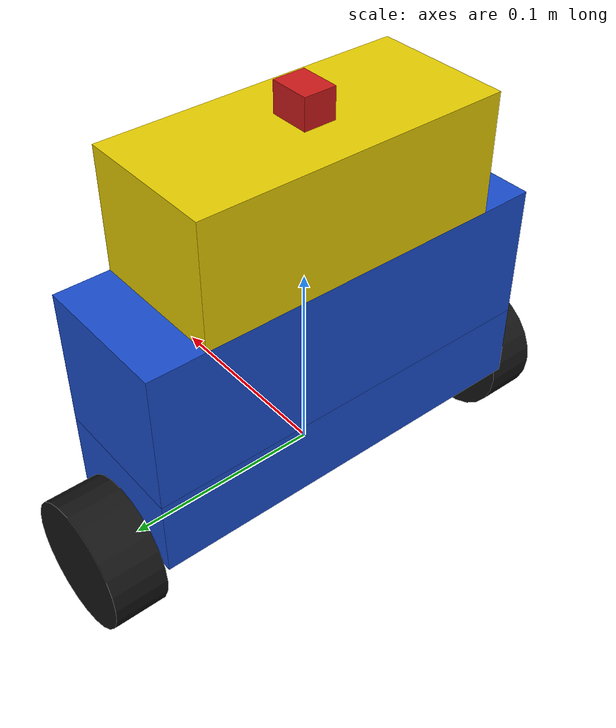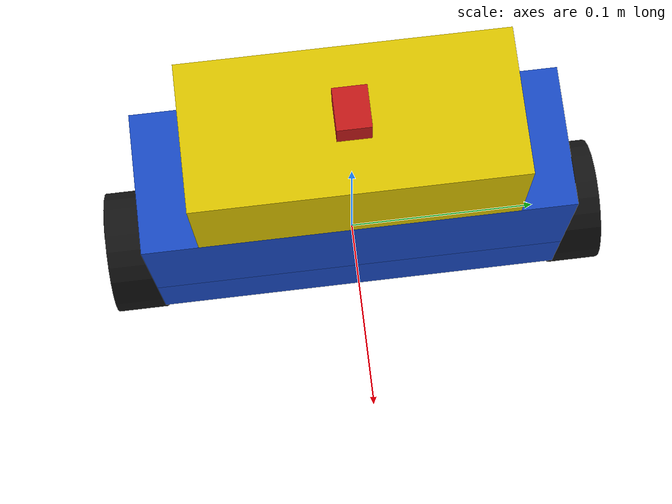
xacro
<?xml version="1.0"?>
<robot name="segway_mini" xmlns:xacro="http://www.ros.org/wiki/xacro">

  <!-- ============================================================
       PARAMÈTRES GÉOMÉTRIQUES
  ============================================================ -->

  <!-- Châssis -->
  <xacro:property name="chassis_x" value="0.070"/>  <!-- profondeur 70mm -->
  <xacro:property name="chassis_y" value="0.210"/>  <!-- largeur 210mm -->

  <!-- Roues -->
  <xacro:property name="wheel_r"   value="0.0325"/> <!-- rayon Ø65/2 -->
  <xacro:property name="wheel_w"   value="0.027"/>  <!-- largeur 27mm -->
  <xacro:property name="wheel_y"   value="${chassis_y/2 + wheel_w/2}"/>
  <!-- Largeur totale = 0.210 + 2×0.027 = 0.264m -->

  <!-- Moteur -->
  <xacro:property name="motor_rpm_noload" value="1000"/>
  <xacro:property name="gear_ratio"       value="70"/>
  <xacro:property name="wheel_rpm_max"    value="130"/>
  <xacro:property name="encoder_cpr"      value="11"/>
  <!-- Résolution roue = 11 × 70 × 4 = 3080 counts/tr -->

  <xacro:property name="motor_hz"  value="0.010"/>  <!-- 20mm/2 -->
  <xacro:property name="elec_hz"   value="0.020"/>  <!-- 40mm/2 -->
  <xacro:property name="cards_hz"  value="0.035"/>  <!-- 70mm/2 -->
  <xacro:property name="lipo_hz"   value="0.030"/>  <!-- 60mm/2 -->
  <xacro:property name="imu_hz"    value="0.0075"/> <!-- 15mm/2 -->

  <!-- Z centres -->
  <xacro:property name="z_motor"   value="0.000"/>  <!-- centré sur axe roues -->
  <xacro:property name="z_elec"    value="0.030"/>  <!-- +30mm -->
  <xacro:property name="z_cards"   value="0.085"/>  <!-- +85mm -->
  <xacro:property name="z_lipo"    value="0.150"/>  <!-- +150mm -->
  <xacro:property name="z_imu"     value="0.1875"/> <!-- +187.5mm -->

  <!-- ============================================================
       MASSES (kg)
  ============================================================ -->
  <xacro:property name="m_wheel"  value="0.040"/>  <!-- par roue -->
  <xacro:property name="m_motor"  value="0.110"/>  <!-- 2 motoréducteurs -->
  <xacro:property name="m_elec"   value="0.050"/>  <!-- pont H + convertisseurs -->
  <xacro:property name="m_cards"  value="0.050"/>  <!-- RPi + Nucleo -->
  <xacro:property name="m_lipo"   value="0.380"/>  <!-- LiPo 3S pesée -->
  <xacro:property name="m_imu"    value="0.003"/>  <!-- MPU6050 -->

  <!-- ============================================================
       MATÉRIAUX
  ============================================================ -->
  <material name="wheel_black">  <color rgba="0.08 0.08 0.08 1.0"/> </material>
  <material name="motor_grey">   <color rgba="0.35 0.35 0.35 1.0"/> </material>
  <material name="elec_blue">    <color rgba="0.10 0.30 0.80 1.0"/> </material>
  <material name="cards_green">  <color rgba="0.05 0.50 0.15 1.0"/> </material>
  <material name="lipo_yellow">  <color rgba="0.90 0.80 0.00 1.0"/> </material>
  <material name="imu_red">      <color rgba="0.80 0.10 0.10 1.0"/> </material>

  <!-- ============================================================
       MACROS INERTIELLES
  ============================================================ -->
  <xacro:macro name="inertia_box" params="m x y z">
    <inertial>
      <mass value="${m}"/>
      <inertia ixx="${m*(y*y + z*z)/12.0}" ixy="0.0" ixz="0.0"
               iyy="${m*(x*x + z*z)/12.0}" iyz="0.0"
               izz="${m*(x*x + y*y)/12.0}"/>
    </inertial>
  </xacro:macro>

  <xacro:macro name="inertia_cylinder" params="m r l">
    <inertial>
      <mass value="${m}"/>
      <inertia ixx="${m*(3.0*r*r + l*l)/12.0}" ixy="0.0" ixz="0.0"
               iyy="${m*(3.0*r*r + l*l)/12.0}" iyz="0.0"
               izz="${m*r*r/2.0}"/>
    </inertial>
  </xacro:macro>

  <link name="base_link">
    <inertial>
      <mass value="0.001"/>
      <inertia ixx="1e-6" ixy="0" ixz="0"
               iyy="1e-6" iyz="0" izz="1e-6"/>
    </inertial>
  </link>

  <!-- ============================================================
       ROUES
  ============================================================ -->
  <xacro:macro name="wheel" params="side sign">
    <link name="${side}_wheel_link">
      <xacro:inertia_cylinder m="${m_wheel}" r="${wheel_r}" l="${wheel_w}"/>
      <visual>
        <origin xyz="0 0 0" rpy="${pi/2} 0 0"/>
        <geometry>
          <cylinder radius="${wheel_r}" length="${wheel_w}"/>
        </geometry>
        <material name="wheel_black"/>
      </visual>
      <collision>
        <origin xyz="0 0 0" rpy="${pi/2} 0 0"/>
        <geometry>
          <cylinder radius="${wheel_r}" length="${wheel_w}"/>
        </geometry>
      </collision>
    </link>

    <joint name="${side}_wheel_joint" type="continuous">
      <parent link="base_link"/>
      <child  link="${side}_wheel_link"/>
      <origin xyz="0 ${sign * wheel_y} 0" rpy="0 0 0"/>
      <axis   xyz="0 1 0"/>
      <dynamics damping="0.01" friction="0.05"/>
    </joint>
  </xacro:macro>

  <xacro:wheel side="left"  sign=" 1"/>
  <xacro:wheel side="right" sign="-1"/>

  <link name="motor_link">
    <xacro:inertia_box m="${m_motor}" x="0.020" y="0.210" z="0.020"/>
    <visual>
      <origin xyz="0 0 0" rpy="0 0 0"/>
      <geometry>
        <box size="0.020 0.210 0.020"/>
      </geometry>
      <material name="motor_grey"/>
    </visual>
    <collision>
      <origin xyz="0 0 0" rpy="0 0 0"/>
      <geometry>
        <box size="0.020 0.210 0.020"/>
      </geometry>
    </collision>
  </link>
  <joint name="motor_joint" type="fixed">
    <parent link="base_link"/>
    <child  link="motor_link"/>
    <origin xyz="0 0 ${z_motor}" rpy="0 0 0"/>
  </joint>

  <link name="elec_link">
    <xacro:inertia_box m="${m_elec}" x="0.070" y="0.210" z="0.040"/>
    <visual>
      <origin xyz="0 0 0" rpy="0 0 0"/>
      <geometry>
        <box size="0.070 0.210 0.040"/>
      </geometry>
      <material name="elec_blue"/>
    </visual>
    <collision>
      <origin xyz="0 0 0" rpy="0 0 0"/>
      <geometry>
        <box size="0.070 0.210 0.040"/>
      </geometry>
    </collision>
  </link>
  <joint name="elec_joint" type="fixed">
    <parent link="base_link"/>
    <child  link="elec_link"/>
    <origin xyz="0 0 ${z_elec}" rpy="0 0 0"/>
  </joint>

  <link name="cards_link">
    <xacro:inertia_box m="${m_cards}" x="0.070" y="0.210" z="0.070"/>
    <visual>
      <origin xyz="0 0 0" rpy="0 0 0"/>
      <geometry>
        <box size="0.070 0.210 0.070"/>
      </geometry>
      <material name="elec_blue"/>
    </visual>
    <collision>
      <origin xyz="0 0 0" rpy="0 0 0"/>
      <geometry>
        <box size="0.070 0.210 0.070"/>
      </geometry>
    </collision>
  </link>
  <joint name="cards_joint" type="fixed">
    <parent link="base_link"/>
    <child  link="cards_link"/>
    <origin xyz="0 0 ${z_cards}" rpy="0 0 0"/>
  </joint>

  <link name="lipo_link">
    <xacro:inertia_box m="${m_lipo}" x="0.070" y="0.155" z="0.060"/>
    <visual>
      <origin xyz="0 0 0" rpy="0 0 0"/>
      <geometry>
        <box size="0.070 0.155 0.060"/>
      </geometry>
      <material name="lipo_yellow"/>
    </visual>
    <collision>
      <origin xyz="0 0 0" rpy="0 0 0"/>
      <geometry>
        <box size="0.070 0.155 0.060"/>
      </geometry>
    </collision>
  </link>
  <joint name="lipo_joint" type="fixed">
    <parent link="base_link"/>
    <child  link="lipo_link"/>
    <origin xyz="0 0 ${z_lipo}" rpy="0 0 0"/>
  </joint>

  <link name="imu_link">
    <xacro:inertia_box m="${m_imu}" x="0.020" y="0.016" z="0.015"/>
    <visual>
      <origin xyz="0 0 0" rpy="0 0 0"/>
      <geometry>
        <box size="0.020 0.016 0.015"/>
      </geometry>
      <material name="imu_red"/>
    </visual>
  </link>
  <joint name="imu_joint" type="fixed">
    <parent link="base_link"/>
    <child  link="imu_link"/>
    <origin xyz="0 0 ${z_imu}" rpy="0 0 0"/>
  </joint>

  <!-- ============================================================
       GAZEBO – PLUGINS ROS2 / Gazebo Classic (gazebo11)
  ============================================================ -->

  <!-- Friction roues sur sol — anti-patinage -->
  <gazebo reference="left_wheel_link">
    <mu1>1.0</mu1>  <mu2>1.0</mu2>
    <kp>100000</kp> <kd>10</kd>
  </gazebo>
  <gazebo reference="right_wheel_link">
    <mu1>1.0</mu1>  <mu2>1.0</mu2>
    <kp>100000</kp> <kd>10</kd>
  </gazebo>

  <!-- Plugin joint_state_publisher -->
  <gazebo>
    <plugin filename="libgazebo_ros_joint_state_publisher.so"
            name="joint_state_publisher">
      <ros>
        <namespace>/segway</namespace>
        <remapping>~/out:=joint_states</remapping>
      </ros>
      <update_rate>50</update_rate>
      <joint_name>left_wheel_joint</joint_name>
      <joint_name>right_wheel_joint</joint_name>
    </plugin>
  </gazebo>

  <!-- Plugin diff_drive
       wheel_separation = 0.210 + 0.027 = 0.237m
       wheel_diameter   = 2 × 0.0325   = 0.065m
  -->
  <gazebo>
    <plugin filename="libgazebo_ros_diff_drive.so"
            name="diff_drive_controller">
      <ros>
        <namespace>/segway</namespace>
      </ros>
      <left_joint>left_wheel_joint</left_joint>
      <right_joint>right_wheel_joint</right_joint>
      <wheel_separation>0.237</wheel_separation>
      <wheel_diameter>0.065</wheel_diameter>
      <max_wheel_torque>2.0</max_wheel_torque>
      <max_wheel_acceleration>10.0</max_wheel_acceleration>
      <publish_odom>true</publish_odom>
      <publish_odom_tf>false</publish_odom_tf>
      <publish_wheel_tf>false</publish_wheel_tf>
      <odometry_frame>odom</odometry_frame>
      <robot_base_frame>base_link</robot_base_frame>
    </plugin>
  </gazebo>

  <!-- Plugin IMU — bruit calqué datasheet MPU6050 -->
  <gazebo reference="imu_link">
    <sensor name="imu_sensor" type="imu">
      <always_on>true</always_on>
      <update_rate>100</update_rate>
      <plugin filename="libgazebo_ros_imu_sensor.so"
              name="imu_plugin">
        <ros>
          <namespace>/segway</namespace>
          <remapping>~/out:=imu/data</remapping>
        </ros>
        <initial_orientation_as_reference>false</initial_orientation_as_reference>
      </plugin>
      <imu>
        <angular_velocity>
          <x><noise type="gaussian"><mean>0.0</mean><stddev>2e-4</stddev></noise></x>
          <y><noise type="gaussian"><mean>0.0</mean><stddev>2e-4</stddev></noise></y>
          <z><noise type="gaussian"><mean>0.0</mean><stddev>2e-4</stddev></noise></z>
        </angular_velocity>
        <linear_acceleration>
          <x><noise type="gaussian"><mean>0.0</mean><stddev>1.7e-2</stddev></noise></x>
          <y><noise type="gaussian"><mean>0.0</mean><stddev>1.7e-2</stddev></noise></y>
          <z><noise type="gaussian"><mean>0.0</mean><stddev>1.7e-2</stddev></noise></z>
        </linear_acceleration>
      </imu>
    </sensor>
  </gazebo>

</robot>
